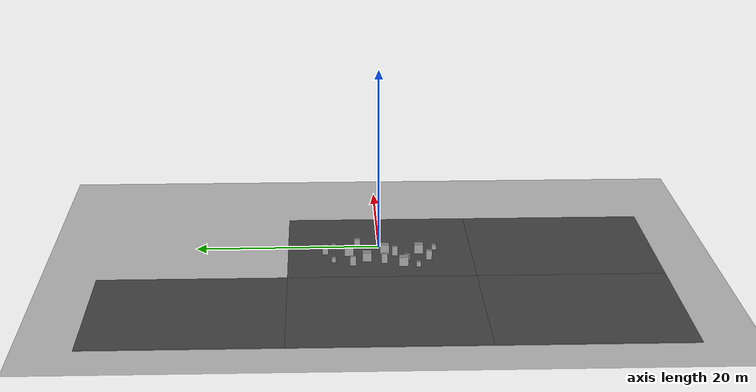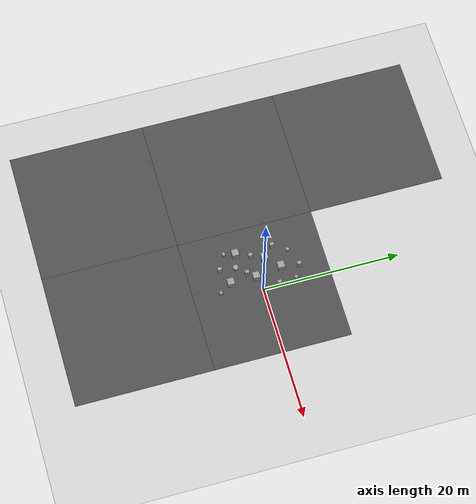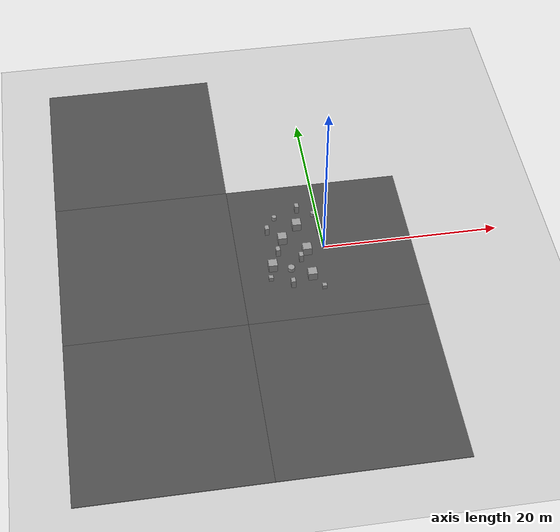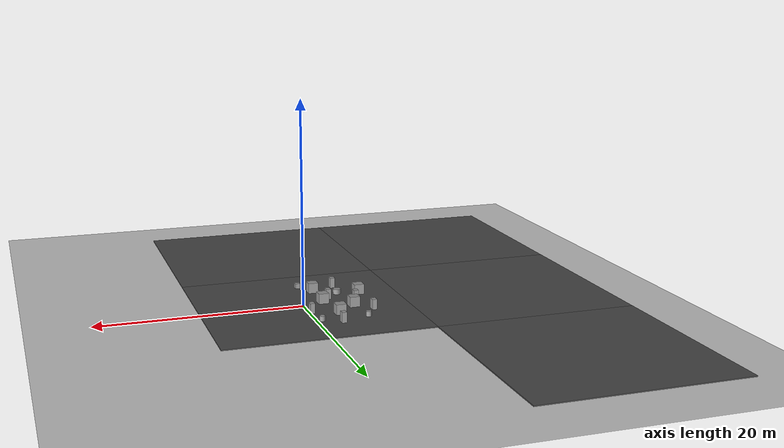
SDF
<sdf version="1.7">
 <world name="default">
  <model name="ground_plane">
   <static>1</static>
   <link name="link">
    <collision name="collision">
     <geometry><plane><normal>0 0 1</normal><size>100 100</size></plane></geometry>
     <surface>
      <contact><collide_bitmask>65535</collide_bitmask></contact>
      <friction><ode><mu>100</mu><mu2>50</mu2></ode></friction>
     </surface>
    </collision>
    <visual name="visual">
     <cast_shadows>0</cast_shadows>
     <geometry><plane><normal>0 0 1</normal><size>100 100</size></plane></geometry>
     <material>
      <script><uri>file://media/materials/scripts/gazebo.material</uri><name>Gazebo/Grey</name></script>
     </material>
    </visual>
   </link>
  </model>
  <model name="asphalt_plane">
   <static>1</static>
   <link name="link">
    <collision name="collision"><geometry><box><size>20 20 0.1</size></box></geometry></collision>
    <visual name="visual">
     <cast_shadows>0</cast_shadows>
     <geometry><box><size>20 20 0.1</size></box></geometry>
     <material>
      <script>
       <uri>model://asphalt_plane/materials/scripts</uri>
       <uri>model://asphalt_plane/materials/textures</uri>
       <name>vrc/asphalt</name>
      </script>
     </material>
    </visual>
   </link>
  </model>
  <model name="asphalt_plane_clone_1">
   <static>1</static>
   <link name="link">
    <collision name="collision"><geometry><box><size>20 20 0.1</size></box></geometry></collision>
    <visual name="visual">
     <cast_shadows>0</cast_shadows>
     <geometry><box><size>20 20 0.1</size></box></geometry>
     <material>
      <script>
       <uri>model://asphalt_plane/materials/scripts</uri>
       <uri>model://asphalt_plane/materials/textures</uri>
       <name>vrc/asphalt</name>
      </script>
     </material>
    </visual>
   </link>
   <pose>0 -20 0 0 -0 0</pose>
  </model>
  <model name="asphalt_plane_clone_2">
   <static>1</static>
   <link name="link">
    <collision name="collision"><geometry><box><size>20 20 0.1</size></box></geometry></collision>
    <visual name="visual">
     <cast_shadows>0</cast_shadows>
     <geometry><box><size>20 20 0.1</size></box></geometry>
     <material>
      <script>
       <uri>model://asphalt_plane/materials/scripts</uri>
       <uri>model://asphalt_plane/materials/textures</uri>
       <name>vrc/asphalt</name>
      </script>
     </material>
    </visual>
   </link>
   <pose>-20 -20 0 0 -0 0</pose>
  </model>
  <model name="asphalt_plane_clone_3">
   <static>1</static>
   <link name="link">
    <collision name="collision"><geometry><box><size>20 20 0.1</size></box></geometry></collision>
    <visual name="visual">
     <cast_shadows>0</cast_shadows>
     <geometry><box><size>20 20 0.1</size></box></geometry>
     <material>
      <script>
       <uri>model://asphalt_plane/materials/scripts</uri>
       <uri>model://asphalt_plane/materials/textures</uri>
       <name>vrc/asphalt</name>
      </script>
     </material>
    </visual>
   </link>
   <pose>-20 0 0 0 -0 0</pose>
  </model>
  <model name="asphalt_plane_clone_4">
   <static>1</static>
   <link name="link">
    <collision name="collision"><geometry><box><size>20 20 0.1</size></box></geometry></collision>
    <visual name="visual">
     <cast_shadows>0</cast_shadows>
     <geometry><box><size>20 20 0.1</size></box></geometry>
     <material>
      <script>
       <uri>model://asphalt_plane/materials/scripts</uri>
       <uri>model://asphalt_plane/materials/textures</uri>
       <name>vrc/asphalt</name>
      </script>
     </material>
    </visual>
   </link>
   <pose>-20 20 0 0 -0 0</pose>
  </model>
  <model name="unit_cylinder_clone_3">
   <pose>-0.494246 5.00001 0.294836 -3e-06 -2e-06 0.000399</pose>
   <link name="link">
    <inertial>
     <mass>1</mass>
     <inertia><ixx>0.145833</ixx><ixy>0</ixy><ixz>0</ixz><iyy>0.145833</iyy><iyz>0</iyz><izz>0.125</izz></inertia>
    </inertial>
    <collision name="collision">
     <geometry><cylinder><radius>0.264047</radius><length>0.48967</length></cylinder></geometry>
    </collision>
    <visual name="visual">
     <geometry><cylinder><radius>0.264047</radius><length>0.48967</length></cylinder></geometry>
     <material>
      <script><name>Gazebo/Grey</name><uri>file://media/materials/scripts/gazebo.material</uri></script>
     </material>
    </visual>
   </link>
  </model>
  <model name="unit_cylinder_clone_14">
   <pose>-4.99999 4.99999 0.294835 0 -0 0.000387</pose>
   <link name="link">
    <inertial>
     <mass>1</mass>
     <inertia><ixx>0.145833</ixx><ixy>0</ixy><ixz>0</ixz><iyy>0.145833</iyy><iyz>0</iyz><izz>0.125</izz></inertia>
    </inertial>
    <collision name="collision">
     <geometry><cylinder><radius>0.264047</radius><length>0.48967</length></cylinder></geometry>
    </collision>
    <visual name="visual">
     <geometry><cylinder><radius>0.264047</radius><length>0.48967</length></cylinder></geometry>
     <material>
      <script><name>Gazebo/Grey</name><uri>file://media/materials/scripts/gazebo.material</uri></script>
     </material>
    </visual>
   </link>
  </model>
  <model name="unit_box_0_clone_1_clone_3">
   <pose>-0.959344 -5.98533 0.301356 0 -0 1e-06</pose>
   <link name="link">
    <inertial>
     <mass>1</mass>
     <inertia>
      <ixx>0.166667</ixx>
      <ixy>0</ixy>
      <ixz>0</ixz>
      <iyy>0.166667</iyy>
      <iyz>0</iyz>
      <izz>0.166667</izz>
     </inertia>
    </inertial>
    <collision name="collision">
     <geometry><box><size>0.495294 0.467832 0.502712</size></box></geometry>
    </collision>
    <visual name="visual">
     <geometry><box><size>0.495294 0.467832 0.502712</size></box></geometry>
     <material>
      <script><name>Gazebo/Grey</name><uri>file://media/materials/scripts/gazebo.material</uri></script>
     </material>
    </visual>
   </link>
  </model>
  <model name="unit_box_0_clone_1_clone_4">
   <pose>-6.65731 -4.0283 0.301356 0 -0 1e-06</pose>
   <link name="link">
    <inertial>
     <mass>1</mass>
     <inertia>
      <ixx>0.166667</ixx>
      <ixy>0</ixy>
      <ixz>0</ixz>
      <iyy>0.166667</iyy>
      <iyz>0</iyz>
      <izz>0.166667</izz>
     </inertia>
    </inertial>
    <collision name="collision">
     <geometry><box><size>0.495294 0.467832 0.502712</size></box></geometry>
    </collision>
    <visual name="visual">
     <geometry><box><size>0.495294 0.467832 0.502712</size></box></geometry>
     <material>
      <script><name>Gazebo/Grey</name><uri>file://media/materials/scripts/gazebo.material</uri></script>
     </material>
    </visual>
   </link>
  </model>
  <model name="unit_box_2">
   <pose>-2.0426 -4.2498 0.549996 9e-06 1e-06 0</pose>
   <link name="link">
    <inertial>
     <mass>1</mass>
     <inertia>
      <ixx>0.166667</ixx>
      <ixy>0</ixy>
      <ixz>0</ixz>
      <iyy>0.166667</iyy>
      <iyz>0</iyz>
      <izz>0.166667</izz>
     </inertia>
    </inertial>
    <collision name="collision"><geometry><box><size>1 1 1</size></box></geometry></collision>
    <visual name="visual">
     <geometry><box><size>1 1 1</size></box></geometry>
     <material>
      <script><name>Gazebo/Grey</name><uri>file://media/materials/scripts/gazebo.material</uri></script>
     </material>
    </visual>
   </link>
  </model>
  <model name="unit_box_3">
   <pose>-0.185436 2.4314 0.55 0 -0 0</pose>
   <link name="link">
    <inertial>
     <mass>1</mass>
     <inertia>
      <ixx>0.166667</ixx>
      <ixy>0</ixy>
      <ixz>0</ixz>
      <iyy>0.166667</iyy>
      <iyz>0</iyz>
      <izz>0.166667</izz>
     </inertia>
    </inertial>
    <collision name="collision"><geometry><box><size>0.473217 0.637104 1</size></box></geometry></collision>
    <visual name="visual">
     <geometry><box><size>0.473217 0.637104 1</size></box></geometry>
     <material>
      <script><name>Gazebo/Grey</name><uri>file://media/materials/scripts/gazebo.material</uri></script>
     </material>
    </visual>
   </link>
  </model>
  <model name="unit_box_3_clone">
   <pose>-2.24652 5.9397 0.55 0 -0 0</pose>
   <link name="link">
    <inertial>
     <mass>1</mass>
     <inertia>
      <ixx>0.166667</ixx>
      <ixy>0</ixy>
      <ixz>0</ixz>
      <iyy>0.166667</iyy>
      <iyz>0</iyz>
      <izz>0.166667</izz>
     </inertia>
    </inertial>
    <collision name="collision"><geometry><box><size>0.473217 0.637104 1</size></box></geometry></collision>
    <visual name="visual">
     <geometry><box><size>0.473217 0.637104 1</size></box></geometry>
     <material>
      <script><name>Gazebo/Grey</name><uri>file://media/materials/scripts/gazebo.material</uri></script>
     </material>
    </visual>
   </link>
  </model>
  <model name="unit_box_3_clone_2">
   <pose>-6.12917 2.98269 0.55 0 -0 0</pose>
   <link name="link">
    <inertial>
     <mass>1</mass>
     <inertia>
      <ixx>0.166667</ixx>
      <ixy>0</ixy>
      <ixz>0</ixz>
      <iyy>0.166667</iyy>
      <iyz>0</iyz>
      <izz>0.166667</izz>
     </inertia>
    </inertial>
    <collision name="collision"><geometry><box><size>0.473217 0.637104 1</size></box></geometry></collision>
    <visual name="visual">
     <geometry><box><size>0.473217 0.637104 1</size></box></geometry>
     <material>
      <script><name>Gazebo/Grey</name><uri>file://media/materials/scripts/gazebo.material</uri></script>
     </material>
    </visual>
   </link>
  </model>
  <model name="unit_box_2_clone">
   <pose>-2.05323 -0.50452 0.549996 9e-06 1e-06 0</pose>
   <link name="link">
    <inertial>
     <mass>1</mass>
     <inertia>
      <ixx>0.166667</ixx>
      <ixy>0</ixy>
      <ixz>0</ixz>
      <iyy>0.166667</iyy>
      <iyz>0</iyz>
      <izz>0.166667</izz>
     </inertia>
    </inertial>
    <collision name="collision"><geometry><box><size>1 1 1</size></box></geometry></collision>
    <visual name="visual">
     <geometry><box><size>1 1 1</size></box></geometry>
     <material>
      <script><name>Gazebo/Grey</name><uri>file://media/materials/scripts/gazebo.material</uri></script>
     </material>
    </visual>
   </link>
  </model>
  <model name="unit_box_2_clone_0">
   <pose>-2.67554 3.35682 0.549996 9e-06 1e-06 0</pose>
   <link name="link">
    <inertial>
     <mass>1</mass>
     <inertia>
      <ixx>0.166667</ixx>
      <ixy>0</ixy>
      <ixz>0</ixz>
      <iyy>0.166667</iyy>
      <iyz>0</iyz>
      <izz>0.166667</izz>
     </inertia>
    </inertial>
    <collision name="collision"><geometry><box><size>1 1 1</size></box></geometry></collision>
    <visual name="visual">
     <geometry><box><size>1 1 1</size></box></geometry>
     <material>
      <script><name>Gazebo/Grey</name><uri>file://media/materials/scripts/gazebo.material</uri></script>
     </material>
    </visual>
   </link>
  </model>
  <model name="unit_box_2_clone_1">
   <pose>-4.5991 1.46029 0.55 0 -0 0</pose>
   <link name="link">
    <inertial>
     <mass>1</mass>
     <inertia>
      <ixx>0.166667</ixx>
      <ixy>0</ixy>
      <ixz>0</ixz>
      <iyy>0.166667</iyy>
      <iyz>0</iyz>
      <izz>0.166667</izz>
     </inertia>
    </inertial>
    <collision name="collision"><geometry><box><size>1 1 1</size></box></geometry></collision>
    <visual name="visual">
     <geometry><box><size>1 1 1</size></box></geometry>
     <material>
      <script><name>Gazebo/Grey</name><uri>file://media/materials/scripts/gazebo.material</uri></script>
     </material>
    </visual>
   </link>
  </model>
  <model name="unit_box_2_clone_2">
   <pose>-6.24071 -2.42219 0.55 0 -0 0</pose>
   <link name="link">
    <inertial>
     <mass>1</mass>
     <inertia>
      <ixx>0.166667</ixx>
      <ixy>0</ixy>
      <ixz>0</ixz>
      <iyy>0.166667</iyy>
      <iyz>0</iyz>
      <izz>0.166667</izz>
     </inertia>
    </inertial>
    <collision name="collision"><geometry><box><size>1 1 1</size></box></geometry></collision>
    <visual name="visual">
     <geometry><box><size>1 1 1</size></box></geometry>
     <material>
      <script><name>Gazebo/Grey</name><uri>file://media/materials/scripts/gazebo.material</uri></script>
     </material>
    </visual>
   </link>
  </model>
  <model name="unit_box_3_clone_0">
   <pose>-2.8958 -1.60924 0.55 0 -0 0</pose>
   <link name="link">
    <inertial>
     <mass>1</mass>
     <inertia>
      <ixx>0.166667</ixx>
      <ixy>0</ixy>
      <ixz>0</ixz>
      <iyy>0.166667</iyy>
      <iyz>0</iyz>
      <izz>0.166667</izz>
     </inertia>
    </inertial>
    <collision name="collision"><geometry><box><size>0.473217 0.637104 1</size></box></geometry></collision>
    <visual name="visual">
     <geometry><box><size>0.473217 0.637104 1</size></box></geometry>
     <material>
      <script><name>Gazebo/Grey</name><uri>file://media/materials/scripts/gazebo.material</uri></script>
     </material>
    </visual>
   </link>
  </model>
  <model name="unit_box_3_clone_6">
   <pose>-5.35907 -0.403001 0.55 0 -0 0</pose>
   <link name="link">
    <inertial>
     <mass>1</mass>
     <inertia>
      <ixx>0.166667</ixx>
      <ixy>0</ixy>
      <ixz>0</ixz>
      <iyy>0.166667</iyy>
      <iyz>0</iyz>
      <izz>0.166667</izz>
     </inertia>
    </inertial>
    <collision name="collision"><geometry><box><size>0.473217 0.637104 1</size></box></geometry></collision>
    <visual name="visual">
     <geometry><box><size>0.473217 0.637104 1</size></box></geometry>
     <material>
      <script><name>Gazebo/Grey</name><uri>file://media/materials/scripts/gazebo.material</uri></script>
     </material>
    </visual>
   </link>
  </model>
  <model name="unit_box_3_clone_7">
   <pose>-4.35283 -5.23986 0.55 0 -0 0</pose>
   <link name="link">
    <inertial>
     <mass>1</mass>
     <inertia>
      <ixx>0.166667</ixx>
      <ixy>0</ixy>
      <ixz>0</ixz>
      <iyy>0.166667</iyy>
      <iyz>0</iyz>
      <izz>0.166667</izz>
     </inertia>
    </inertial>
    <collision name="collision"><geometry><box><size>0.473217 0.637104 1</size></box></geometry></collision>
    <visual name="visual">
     <geometry><box><size>0.473217 0.637104 1</size></box></geometry>
     <material>
      <script><name>Gazebo/Grey</name><uri>file://media/materials/scripts/gazebo.material</uri></script>
     </material>
    </visual>
   </link>
  </model>
  <model name="unit_cylinder_clone_4_clone_clone_0">
   <pose>-4.20422 -2.93051 0.294836 0 -3e-06 2.3e-05</pose>
   <link name="link">
    <inertial>
     <mass>1</mass>
     <inertia><ixx>0.145833</ixx><ixy>0</ixy><ixz>0</ixz><iyy>0.145833</iyy><iyz>0</iyz><izz>0.125</izz></inertia>
    </inertial>
    <collision name="collision">
     <geometry><cylinder><radius>0.384097</radius><length>0.48967</length></cylinder></geometry>
    </collision>
    <visual name="visual">
     <geometry><cylinder><radius>0.384097</radius><length>0.48967</length></cylinder></geometry>
     <material>
      <script><name>Gazebo/Grey</name><uri>file://media/materials/scripts/gazebo.material</uri></script>
     </material>
    </visual>
   </link>
  </model>
 </world>
</sdf>
